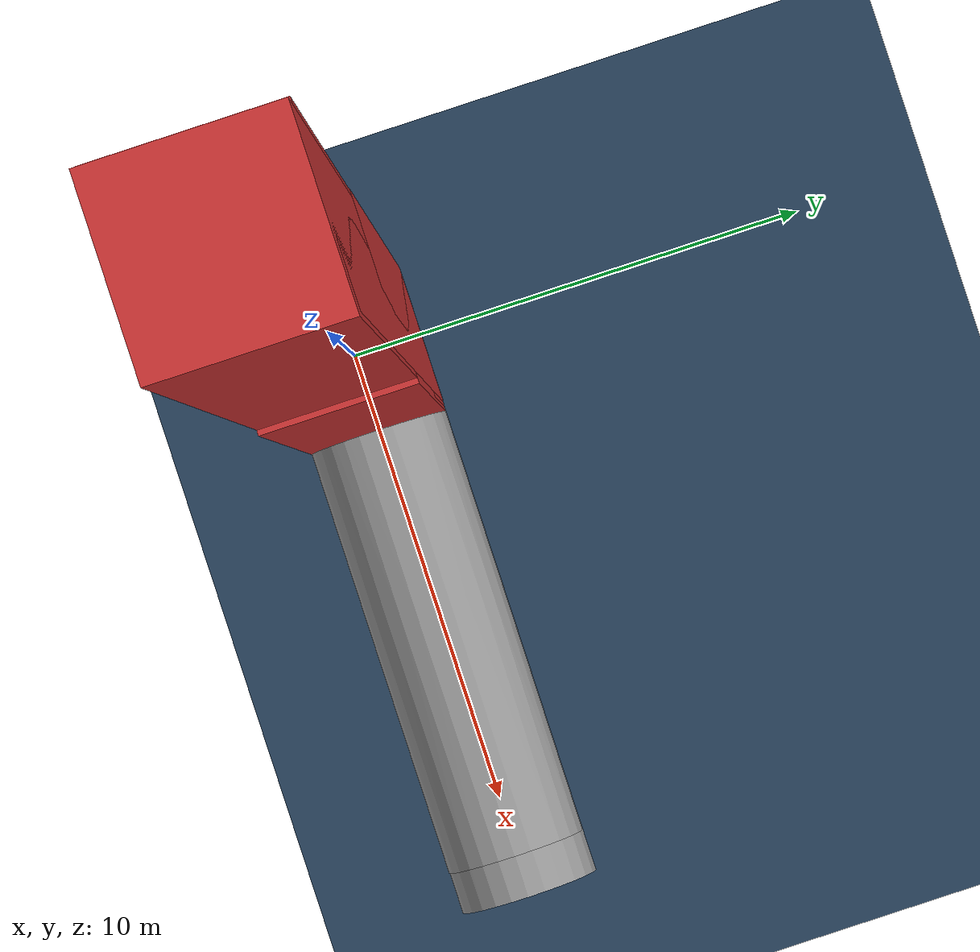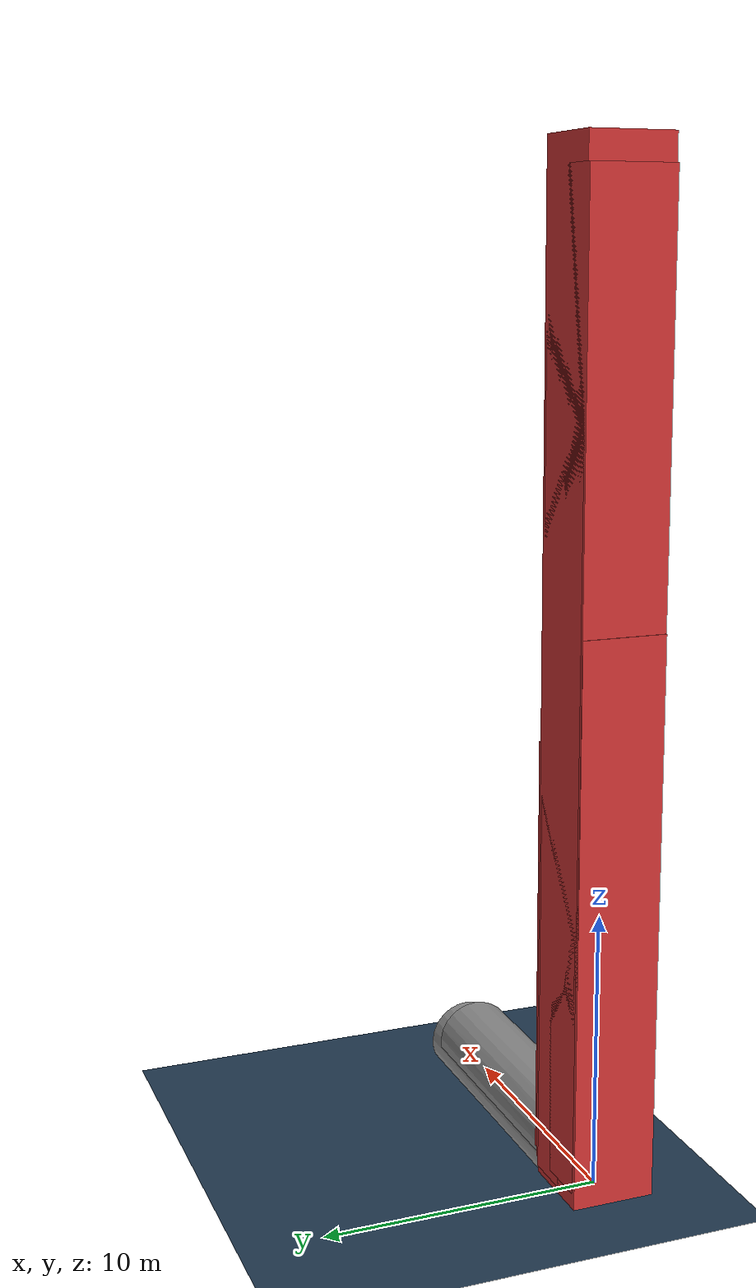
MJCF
<mujoco model="escena">

  <include file="brazorobotico3.xml"/>

  <statistic center="0 0 0" extent="300"/>

  <visual>
    <headlight diffuse="0.6 0.6 0.6" ambient="0.3 0.3 0.3" specular="0 0 0"/>
    <rgba haze="0.15 0.25 0.35 1"/>
    <global azimuth="0" elevation="0"/>
  </visual>

  <asset>
    <texture type="skybox" builtin="gradient" rgb1="0.3 0.5 0.7" rgb2="0 0 0" width="512" height="3072"/>
    <texture type="2d" name="groundplane" builtin="checker" mark="edge" rgb1="0.2 0.3 0.4" rgb2="0.1 0.2 0.3"
      markrgb="0.8 0.8 0.8" width="300" height="300"/>
    <material name="groundplane" texture="groundplane" texuniform="true" texrepeat="5 5" reflectance="0.2"/>
  </asset>

  <worldbody>
    <geom name="floor" size="0 0 0.05" type="plane" material="groundplane"/>
  </worldbody>

</mujoco>

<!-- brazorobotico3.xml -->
<mujoco model="brazo">

  <compiler angle="radian" meshdir="modelos1" autolimits="true"/>

  <default>
    <geom friction="0.2" margin="0.001" density="1000"/>
    <joint type="hinge" damping="1.0" armature="0.01"/>
    <position kp="15" forcerange="-100 100"/>

    <default class="rot_z">
      <joint axis="0 0 1" range="-3.14 3.14"/>
    </default>

    <default class="rot_y">
      <joint axis="0 1 0" range="-1.57 1.57"/>
    </default>
  </default>

  <asset>
    <material name="gris" rgba="0.6 0.6 0.6 1"/>
    <material name="rojo" rgba="0.8 0.2 0.2 1"/>

    <mesh file="base.obj"/>
    <mesh file="link1.obj"/>
    <mesh file="hombro.obj"/>
    <mesh file="link2.obj"/>
    <mesh file="antebrazo.obj"/>
    <mesh file="link3.obj"/>
    <mesh file="gripper.obj"/>
  </asset>

  <worldbody>
    <light name="spotlight" mode="targetbodycom" target="base" pos="0 -1 2"/>

    <body name="base" pos="0 0 0">
      <joint class="rot_z" name="q0_base"/>
      <geom type="mesh" mesh="base" material="rojo"/>

      <body name="link1" pos="0 0 0.2">
        <geom type="mesh" mesh="link1" material="gris" axisangle="0 1 0 1.5708"/>

        <body name="hombro" pos="0.04 0 0">
          <joint class="rot_y" name="q1_hombro"/> <geom type="mesh" mesh="hombro" material="rojo"/> <body name="link2" pos="0 0 0.344">
            <joint class="rot_y" name="q2_link2"/> <geom type="mesh" mesh="link2" material="gris" axisangle="0 1 0 1.5708"/>

            <body name="antebrazo" pos="0.1205 0 0">
              <joint class="rot_z" name="q3_antebrazo"/> <geom type="mesh" mesh="antebrazo" material="rojo"/> <body name="link3" pos="0 0 0.35">
                <joint class="rot_y" name="q4_link3"/> <geom type="mesh" mesh="link3" material="gris" axisangle="0 1 0 1.5708"/>

                <body name="gripper" pos="0.11 0 0">
                  <joint class="rot_z" name="q5_gripper"/> <geom type="mesh" mesh="gripper" material="rojo"/>

                  <site name="eef" pos="0 0 0.15" size="0.01"/>
                </body>
              </body>
            </body>
          </body>
        </body>
      </body>
    </body>
  </worldbody>

  <contact>
    <exclude body1="base" body2="link1"/>
    <exclude body1="link1" body2="hombro"/>
    <exclude body1="hombro" body2="link2"/>
    <exclude body1="link2" body2="antebrazo"/>
    <exclude body1="antebrazo" body2="link3"/>
    <exclude body1="link3" body2="gripper"/>
  </contact>

  <actuator>
    <position class="rot_z" name="actuador_q0" joint="q0_base"/>
    <position class="rot_y" name="actuador_q1" joint="q1_hombro"/>
    <position class="rot_y" name="actuador_q2" joint="q2_link2"/>
    <position class="rot_z" name="actuador_q3" joint="q3_antebrazo"/>
    <position class="rot_y" name="actuador_q4" joint="q4_link3"/>
    <position class="rot_z" name="actuador_q5" joint="q5_gripper"/>
  </actuator>

  <keyframe>
    <key name="home" qpos="0 0 0 0 0 0" ctrl="0 0 0 0 0 0"/>
  </keyframe>

</mujoco>
